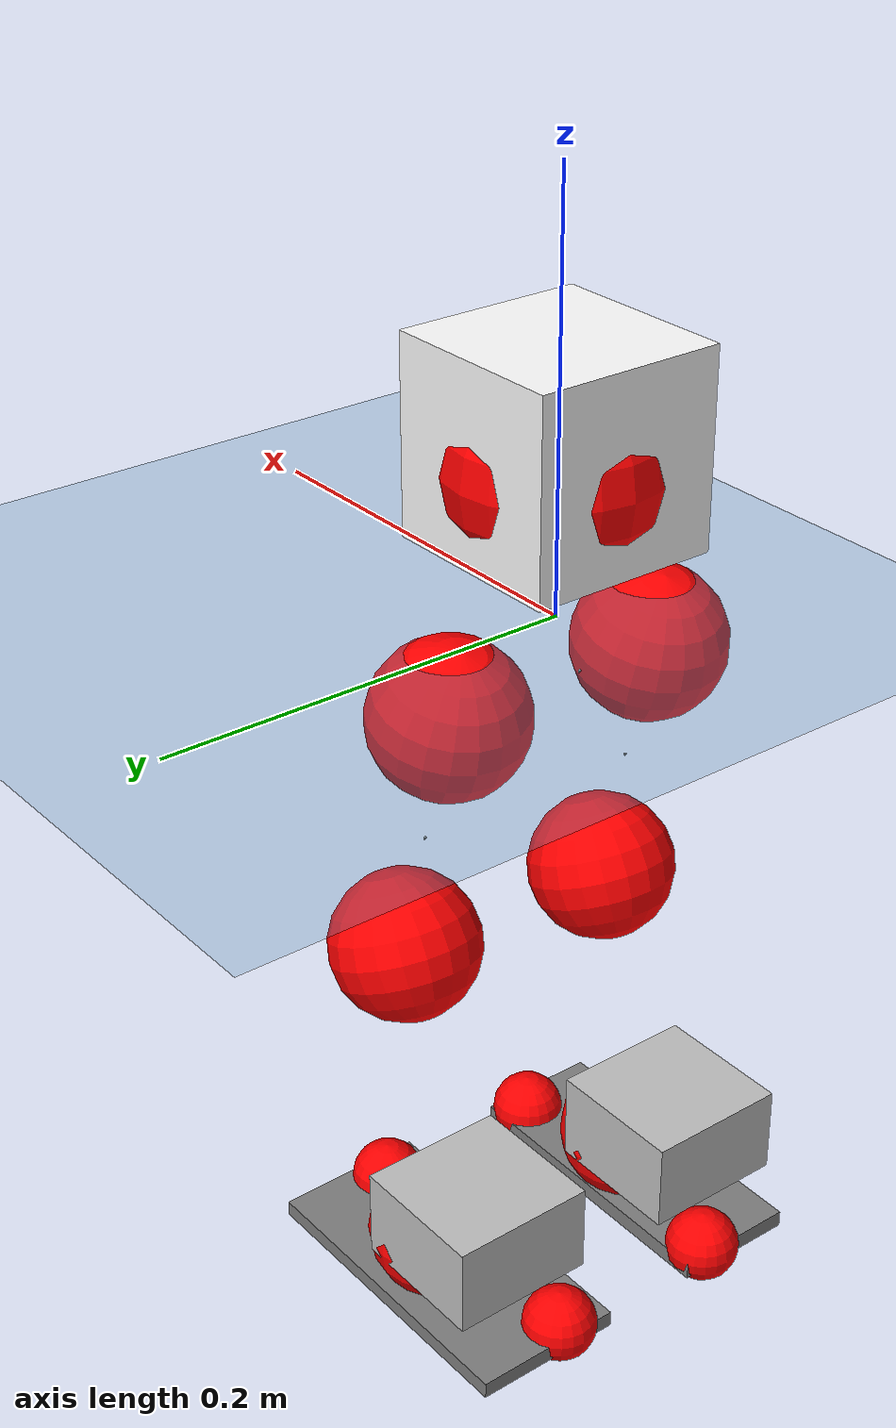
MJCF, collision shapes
<mujoco model="pi_12dof_release_v1">
  <compiler angle="radian" assetdir="assets" balanceinertia="true" inertiafromgeom="false"/>

  <option timestep="0.005" density="1.2" viscosity="2e-05"/>

  <size nkey="1"/>

  <visual>
    <quality shadowsize="8192"/>
    <map shadowclip="0.5"/>
  </visual>

  <default>
    <default class="/">
      <joint armature="0.01" damping="0.01" frictionloss="0.01"/>
      <geom contype="0" conaffinity="0" group="1" solref="-1000 -80"/>
      <site size="0.01 0.005 0.005" group="5"/>
      <general forcelimited="true" biastype="affine" gainprm="20" biasprm="0 -20 -0.5"/>
      <default class="foot">
        <geom size="0.0845 0.036 0.005" type="box" condim="6" group="4" priority="1" friction="0.9 0.2 0.2" solimp="0.015 1 0.005"/>
      </default>
      <default class="reward_collision_sphere">
        <geom group="5" rgba="1 0 0 1"/>
      </default>
    </default>
  </default>

  <asset>
    <texture type="skybox" colorspace="auto" name="//unnamed_texture_0" builtin="gradient" rgb1="0.95 0.95 0.95" rgb2="0.95 0.95 0.95" width="100" height="600"/>
    <texture type="2d" colorspace="auto" name="texplane" builtin="checker" rgb1="0.345 0.575 0.748" rgb2="0.345 0.575 0.748" markrgb="1 1 1" width="512" height="512"/>
    <material name="MatPlane" class="/" texture="texplane" texuniform="true" texrepeat="2 2" specular="0.9"/>
    <mesh name="baselink_1" class="/" file="baselink_1.STL"/>
    <mesh name="r_hip_pitch_link" class="/" file="r_hip_pitch_link.STL"/>
    <mesh name="r_hip_roll_link" class="/" file="r_hip_roll_link.STL"/>
    <mesh name="r_thigh_link" class="/" file="r_thigh_link.STL"/>
    <mesh name="r_calf_link" class="/" file="r_calf_link.STL"/>
    <mesh name="r_ankle_pitch_link" class="/" file="r_ankle_pitch_link.STL"/>
    <mesh name="r_ankle_roll_link" class="/" file="r_ankle_roll_link.STL"/>
    <mesh name="l_hip_pitch_link" class="/" file="l_hip_pitch_link.STL"/>
    <mesh name="l_hip_roll_link" class="/" file="l_hip_roll_link.STL"/>
    <mesh name="l_thigh_link" class="/" file="l_thigh_link.STL"/>
    <mesh name="l_calf_link" class="/" file="l_calf_link.STL"/>
    <mesh name="l_ankle_pitch_link" class="/" file="l_ankle_pitch_link.STL"/>
    <mesh name="l_ankle_roll_link" class="/" file="l_ankle_roll_link.STL"/>
  </asset>

  <worldbody>
    <geom name="floor" class="/" size="100 100 0.125" type="plane" group="0" material="MatPlane"/>
    <light name="toplight_shadow" class="/" pos="0 0 5" dir="0.0990148 0.0990148 -0.990148" type="directional" ambient="0.04 0.04 0.04" diffuse="0.55 0.55 0.55" specular="0.12 0.12 0.12"/>
    <light name="toplight_fill" class="/" pos="0 0 5" dir="0.0990148 0.0990148 -0.990148" type="directional" castshadow="false" ambient="0.04 0.04 0.04" diffuse="0.3 0.3 0.3" specular="0.08 0.08 0.08"/>
    <body name="trunk" pos="0.002631 -0.000364176 -0.000352643" quat="0.999999 0.000645151 0.00017037 0.00115305">
      <inertial pos="-0.000317881 -0.000710789 0.040938" quat="0.693928 0.0137951 0.00839051 0.719863" mass="1.66745" diaginertia="0.0111929 0.00216697 0.00420775"/>
      <joint name="//unnamed_joint_0" type="free"/>
      <geom name="//unnamed_geom_1" class="/" type="mesh" density="0" rgba="1 1 1 1" mesh="baselink_1"/>
      <geom name="//unnamed_geom_2" class="/" size="0.0463965 0.0463965 0.0463965" pos="0 0 0.0803134" type="box" rgba="1 1 1 1"/>
      <geom name="//unnamed_geom_3" class="reward_collision_sphere" size="0.0510361" pos="0 0 0.0702742"/>
      <site name="imu" class="/" pos="-0.00105175 0.00445643 0.0131505" size="0.00927929"/>
      <camera name="track" class="/" pos="0 -1.50474 0" quat="0.707107 0.707107 0 0" mode="trackcom"/>
      <camera name="ego_camera" class="/" pos="0.0770625 0 0.180705" quat="-0.5 -0.5 0.5 0.5"/>
      <body name="r_hip_pitch_link" pos="-0.000280969 -0.0160575 -0.0326684" quat="0.992197 3.59336e-05 -0.124678 -3.47975e-05">
        <inertial pos="-4.68845e-05 -0.0443954 1.34411e-05" quat="-0.0191255 0.706023 -0.0284982 0.707357" mass="0.29046" diaginertia="0.00012669 2.35296e-05 8.46469e-05"/>
        <joint name="r_hip_pitch_joint" class="/" pos="0 0 0" axis="0.00685084 -0.999963 0.00522222" range="-1.76045 1.23754" armature="0.00959598" damping="0.0249119" frictionloss="0.0102342"/>
        <geom name="//unnamed_geom_4" class="/" type="mesh" density="0" rgba="0.75294 0.75294 0.75294 1" mesh="r_hip_pitch_link"/>
        <geom name="//unnamed_geom_5" class="/" size="0.000463965 0.000463965 0.000463965" type="box" rgba="0.75294 0.75294 0.75294 1"/>
        <body name="r_hip_roll_link" pos="0.00112439 -0.0422404 0.00121571" quat="0.999999 -0.00012128 -0.00118957 0.000240556">
          <inertial pos="0.000814863 -0.00173337 -0.0640972" quat="0.705884 -0.0789009 -0.0824553 0.699073" mass="0.300833" diaginertia="0.000375495 6.56328e-05 0.000131809"/>
          <joint name="r_hip_roll_joint" class="/" pos="0 0 0" axis="-0.999948 -0.00945551 -0.00386744" stiffness="0.00099987" range="-0.100292 0.457852" armature="0.00936479" damping="0" frictionloss="0.0104082"/>
          <geom name="//unnamed_geom_6" class="/" type="mesh" density="0" rgba="0.75294 0.75294 0.75294 1" mesh="r_hip_roll_link"/>
          <geom name="//unnamed_geom_7" class="/" size="0.000463965 0.000463965 0.000463965" type="box" rgba="0.75294 0.75294 0.75294 1"/>
          <geom name="//unnamed_geom_8" class="reward_collision_sphere" size="0.0371172"/>
          <body name="r_thigh_link" pos="-0.00184348 -0.00215332 -0.0692632" quat="1 0.000294574 0.000153788 -0.000554742">
            <inertial pos="-0.00204943 0.000821934 -0.0459095" quat="0.736573 0.676357 -0.000176142 0.000960337" mass="0.0899278" diaginertia="0.000145529 2.4007e-05 6.0308e-05"/>
            <joint name="r_thigh_joint" class="/" pos="0 0 0" axis="7.71088e-05 0.000741751 -1" range="-0.347263 0.617361" armature="0.00880464" damping="0" frictionloss="0.00806392"/>
            <geom name="//unnamed_geom_9" class="/" type="mesh" density="0" rgba="0.75294 0.75294 0.75294 1" mesh="r_thigh_link"/>
            <geom name="//unnamed_geom_10" class="/" size="0.000463965 0.000463965 0.000463965" type="box" rgba="0.75294 0.75294 0.75294 1"/>
            <body name="r_calf_link" pos="-0.00174062 -0.0017785 -0.0735137" quat="0.947525 -0.000913483 0.31968 -0.000459708">
              <inertial pos="4.44858e-05 -0.00330777 -0.069961" quat="0.999892 -0.00290218 -0.011339 0.00893827" mass="0.643142" diaginertia="0.00387673 0.000832758 0.000172334"/>
              <joint name="r_calf_joint" class="/" pos="0 0 0" axis="-0.00942383 -0.99994 -0.0056554" range="-1.59711 0.650928" armature="0.00959322" damping="0.00418703" frictionloss="0.0102759"/>
              <geom name="//unnamed_geom_11" class="/" type="mesh" density="0" rgba="0.75294 0.75294 0.75294 1" mesh="r_calf_link"/>
              <geom name="//unnamed_geom_12" class="/" size="0.000463965 0.000463965 0.000463965" type="box" rgba="0.75294 0.75294 0.75294 1"/>
              <geom name="//unnamed_geom_13" class="reward_collision_sphere" size="0.0371172"/>
              <body name="r_ankle_pitch_link" pos="0.000458728 -0.0023779 -0.141015" quat="0.980118 0.000171485 -0.198413 2.71338e-05">
                <inertial pos="0.00586972 0.000559573 -0.000214944" quat="0.0100203 0.706739 -0.000898091 0.707403" mass="0.142229" diaginertia="0.000349985 5.3662e-05 0.000125186"/>
                <joint name="r_ankle_pitch_joint" class="/" pos="0 0 0" axis="-0.00373451 -0.999923 -0.0118567" range="-1.29417 0.503293" armature="0.0094442" damping="0" frictionloss="0.00976649"/>
                <geom name="//unnamed_geom_14" class="/" type="mesh" density="0" rgba="0.75294 0.75294 0.75294 1" mesh="r_ankle_pitch_link"/>
                <geom name="//unnamed_geom_15" class="/" size="0.0361892 0.0371172 0.0231982" type="box" rgba="0.75294 0.75294 0.75294 1"/>
                <body name="r_ankle_roll_link" pos="0.0775378 0.000518981 0.000279711" quat="1 -6.45738e-06 -3.69571e-05 -0.000108467">
                  <inertial pos="-0.0243411 0.000468887 -0.0148036" quat="0.552512 0.429019 0.431796 0.569408" mass="0.410755" diaginertia="0.00129072 0.000248254 0.000281195"/>
                  <joint name="r_ankle_roll_joint" class="/" pos="0 0 0" axis="-0.999899 -0.0135153 -0.00440065" range="-0.203228 0.159494" armature="0.0105466" damping="0.0135942" frictionloss="0.0094008"/>
                  <geom name="//unnamed_geom_16" class="/" type="mesh" density="0" rgba="0.75294 0.75294 0.75294 1" mesh="r_ankle_roll_link"/>
                  <geom name="//unnamed_geom_17" class="/" type="mesh" rgba="0.75294 0.75294 0.75294 1" mesh="r_ankle_roll_link"/>
                  <geom name="right_foot" class="foot" size="0.0788189 0.0317871 0.00438398" pos="-0.0524025 0 -0.0441723"/>
                  <geom name="//unnamed_geom_19" class="reward_collision_sphere" size="0.0371172" pos="-0.051375 0 -0.0200783"/>
                  <geom name="//unnamed_geom_20" class="reward_collision_sphere" size="0.0185586" pos="0.0154125 0.0150474 -0.0401567"/>
                  <geom name="//unnamed_geom_21" class="reward_collision_sphere" size="0.0185586" pos="-0.1233 0.0150474 -0.0401567"/>
                  <site name="right_foot" class="foot" pos="-0.0524025 0 -0.0441723" size="0.00927929"/>
                </body>
              </body>
            </body>
          </body>
        </body>
      </body>
      <body name="l_hip_pitch_link" pos="-2.13433e-05 0.0176595 -0.034526" quat="0.992171 1.43202e-05 -0.124887 -0.000197559">
        <inertial pos="0.000514054 0.0431245 -0.00214689" quat="-0.0302984 0.699191 0.0263303 0.713807" mass="0.317556" diaginertia="0.000145277 2.48797e-05 0.000104709"/>
        <joint name="l_hip_pitch_joint" class="/" pos="0 0 0" axis="-0.00552343 0.999903 0.0128097" range="-1.25816 1.7533" armature="0.00914198" damping="0.0120398" frictionloss="0.00928052"/>
        <geom name="//unnamed_geom_22" class="/" type="mesh" density="0" rgba="0.75294 0.75294 0.75294 1" mesh="l_hip_pitch_link"/>
        <geom name="//unnamed_geom_23" class="/" size="0.000463965 0.000463965 0.000463965" type="box" rgba="0.75294 0.75294 0.75294 1"/>
        <body name="l_hip_roll_link" pos="0.000509526 0.0397114 0.00298922" quat="1 -4.77206e-05 -0.000114889 -0.000162617">
          <inertial pos="-0.00120902 -0.000232393 -0.0622053" quat="0.700069 -0.0774802 -0.0771893 0.70565" mass="0.31682" diaginertia="0.000379493 6.5407e-05 0.000132004"/>
          <joint name="l_hip_roll_joint" class="/" pos="0 0 0" axis="-0.999999 0.00112135 -0.000881871" range="-0.492308 0.162753" armature="0.00934867" damping="0.0039793" frictionloss="0.00955361"/>
          <geom name="//unnamed_geom_24" class="/" type="mesh" density="0" rgba="0.75294 0.75294 0.75294 1" mesh="l_hip_roll_link"/>
          <geom name="//unnamed_geom_25" class="/" size="0.000463965 0.000463965 0.000463965" type="box" rgba="0.75294 0.75294 0.75294 1"/>
          <geom name="//unnamed_geom_26" class="reward_collision_sphere" size="0.0371172"/>
          <body name="l_thigh_link" pos="0.000194412 0.00033446 -0.0718066" quat="1 -0.000395976 -0.000145552 -3.90972e-05">
            <inertial pos="0.0010161 0.00125863 -0.0476007" quat="0.675784 0.73709 -7.24566e-05 0.00378074" mass="0.0893798" diaginertia="0.000140309 2.27673e-05 5.66134e-05"/>
            <joint name="l_thigh_joint" class="/" pos="0 0 0" axis="-0.0005786 -0.000493623 -1" range="-0.591194 0.334531" armature="0.0095275" damping="0" frictionloss="0.00961992"/>
            <geom name="//unnamed_geom_27" class="/" type="mesh" density="0" rgba="0.75294 0.75294 0.75294 1" mesh="l_thigh_link"/>
            <geom name="//unnamed_geom_28" class="/" size="0.000463965 0.000463965 0.000463965" type="box" rgba="0.75294 0.75294 0.75294 1"/>
            <body name="l_calf_link" pos="-0.00037099 -0.000363267 -0.069399" quat="0.947522 -0.00037262 0.319688 0.00123763">
              <inertial pos="0.00307403 0.00408503 -0.0728463" quat="0.999895 0.0047285 -0.00229222 0.0135337" mass="0.64908" diaginertia="0.00402268 0.000838032 0.000177667"/>
              <joint name="l_calf_joint" class="/" pos="0 0 0" axis="-0.00388675 0.999992 0.00012848" range="-0.638769 1.63037" armature="0.00890006" damping="0.010154" frictionloss="0.00812398"/>
              <geom name="//unnamed_geom_29" class="/" type="mesh" density="0" rgba="0.75294 0.75294 0.75294 1" mesh="l_calf_link"/>
              <geom name="//unnamed_geom_30" class="/" size="0.000463965 0.000463965 0.000463965" type="box" rgba="0.75294 0.75294 0.75294 1"/>
              <geom name="//unnamed_geom_31" class="reward_collision_sphere" size="0.0371172"/>
              <body name="l_ankle_pitch_link" pos="0.00101942 0.000478102 -0.143025" quat="0.980049 2.93731e-05 -0.198754 5.91584e-05">
                <inertial pos="0.00574084 -0.00099908 -9.45521e-05" quat="-0.00270797 0.707149 0.00216609 0.707056" mass="0.136346" diaginertia="0.000356457 5.46103e-05 0.000122029"/>
                <joint name="l_ankle_pitch_joint" class="/" pos="0 0 0" axis="-0.000432518 0.999993 0.00380801" range="-0.506057 1.29942" armature="0.00933692" damping="0.010233" frictionloss="0.00932961"/>
                <geom name="//unnamed_geom_32" class="/" type="mesh" density="0" rgba="0.75294 0.75294 0.75294 1" mesh="l_ankle_pitch_link"/>
                <geom name="//unnamed_geom_33" class="/" size="0.0361892 0.0371172 0.0231982" type="box" rgba="0.75294 0.75294 0.75294 1"/>
                <body name="l_ankle_roll_link" pos="0.0768358 0.00106411 0.000593067" quat="1 -2.27235e-06 9.49493e-07 5.42122e-05">
                  <inertial pos="-0.0273056 -0.000177386 -0.0151468" quat="0.563084 0.428791 0.431849 0.55909" mass="0.412587" diaginertia="0.00128966 0.000249834 0.00029745"/>
                  <joint name="l_ankle_roll_joint" class="/" pos="0 0 0" axis="-0.999918 -0.00299989 0.0124383" range="-0.155547 0.158237" armature="0.0095726" damping="0.019698" frictionloss="0.00937182"/>
                  <geom name="//unnamed_geom_34" class="/" type="mesh" density="0" rgba="0.75294 0.75294 0.75294 1" mesh="l_ankle_roll_link"/>
                  <geom name="//unnamed_geom_35" class="/" type="mesh" rgba="0.75294 0.75294 0.75294 1" mesh="l_ankle_roll_link"/>
                  <geom name="left_foot" class="foot" size="0.081379 0.0386177 0.00414323" pos="-0.0524025 0 -0.0441723"/>
                  <geom name="//unnamed_geom_37" class="reward_collision_sphere" size="0.0371172" pos="-0.051375 0 -0.0200783"/>
                  <geom name="//unnamed_geom_38" class="reward_collision_sphere" size="0.0185586" pos="0.0154125 -0.0150474 -0.0401567"/>
                  <geom name="//unnamed_geom_39" class="reward_collision_sphere" size="0.0185586" pos="-0.1233 -0.0150474 -0.0401567"/>
                  <site name="left_foot" class="foot" pos="-0.0524025 0 -0.0441723" size="0.00927929"/>
                </body>
              </body>
            </body>
          </body>
        </body>
      </body>
    </body>
  </worldbody>

  <contact>
    <pair class="/" geom1="floor" geom2="right_foot" name="//unnamed_contact_1"/>
    <pair class="/" geom1="floor" geom2="left_foot" name="//unnamed_contact_0"/>
  </contact>

  <actuator>
    <general name="r_hip_pitch_joint" class="/" joint="r_hip_pitch_joint" forcerange="-19.3152 19.3152" gainprm="18.9154" biasprm="0 -18.9154 -0.470894"/>
    <general name="r_hip_roll_joint" class="/" joint="r_hip_roll_joint" forcerange="-20.443 20.443" gainprm="18.9154" biasprm="0 -18.9154 -0.470894"/>
    <general name="r_thigh_joint" class="/" joint="r_thigh_joint" forcerange="-20.0504 20.0504" gainprm="18.9154" biasprm="0 -18.9154 -0.470894"/>
    <general name="r_calf_joint" class="/" joint="r_calf_joint" forcerange="-21.416 21.416" gainprm="18.9154" biasprm="0 -18.9154 -0.470894"/>
    <general name="r_ankle_pitch_joint" class="/" joint="r_ankle_pitch_joint" forcerange="-18.7603 18.7603" gainprm="18.9154" biasprm="0 -18.9154 -0.470894"/>
    <general name="r_ankle_roll_joint" class="/" joint="r_ankle_roll_joint" forcerange="-17.549 17.549" gainprm="18.9154" biasprm="0 -18.9154 -0.470894"/>
    <general name="l_hip_pitch_joint" class="/" joint="l_hip_pitch_joint" forcerange="-19.5553 19.5553" gainprm="18.9154" biasprm="0 -18.9154 -0.470894"/>
    <general name="l_hip_roll_joint" class="/" joint="l_hip_roll_joint" forcerange="-18.9272 18.9272" gainprm="18.9154" biasprm="0 -18.9154 -0.470894"/>
    <general name="l_thigh_joint" class="/" joint="l_thigh_joint" forcerange="-19.7543 19.7543" gainprm="18.9154" biasprm="0 -18.9154 -0.470894"/>
    <general name="l_calf_joint" class="/" joint="l_calf_joint" forcerange="-19.1098 19.1098" gainprm="18.9154" biasprm="0 -18.9154 -0.470894"/>
    <general name="l_ankle_pitch_joint" class="/" joint="l_ankle_pitch_joint" forcerange="-19.9875 19.9875" gainprm="18.9154" biasprm="0 -18.9154 -0.470894"/>
    <general name="l_ankle_roll_joint" class="/" joint="l_ankle_roll_joint" forcerange="-19.576 19.576" gainprm="18.9154" biasprm="0 -18.9154 -0.470894"/>
  </actuator>

  <sensor>
    <gyro site="imu" name="imu_angular_velocity"/>
    <velocimeter site="imu" name="imu_linear_velocity"/>
    <framelinvel objtype="site" objname="left_foot" name="left_foot_global_linear_velocity"/>
    <framelinvel objtype="site" objname="right_foot" name="right_foot_global_linear_velocity"/>
  </sensor>

  <keyframe>
    <key name="home" qpos="0 0 0.291 1 0 0 0 0.4 0 0 -0.8 0.4 0 -0.4 0 0 0.8 -0.4 0"/>
  </keyframe>
</mujoco>
